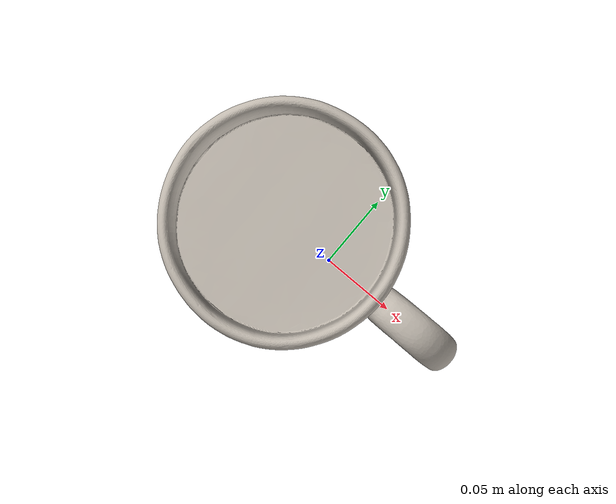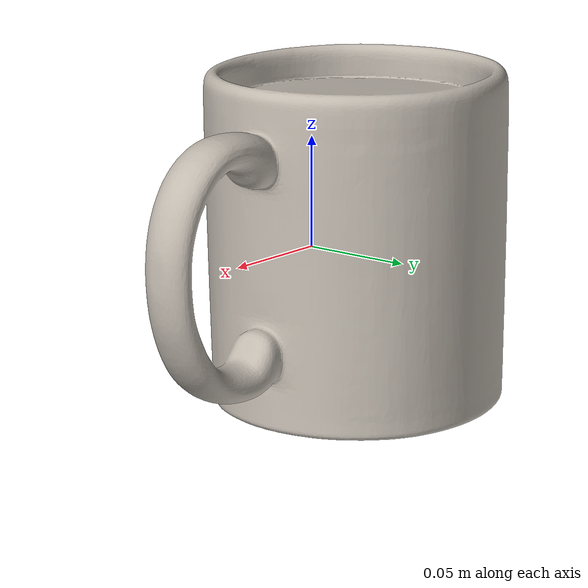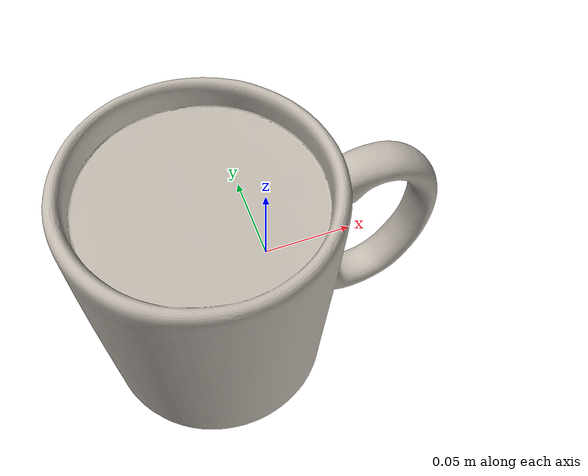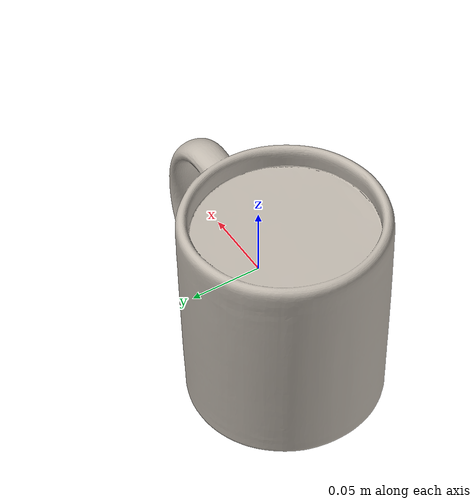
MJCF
<mujoco model="coffee">
  <asset>
  <texture file="visual/material_0.png" name="tex-coffee" type="2d" />
  <material name="coffee" reflectance="0.5" texrepeat="1 1" texture="tex-coffee" texuniform="false" />
  <mesh file="visual/model_normalized_0.obj" name="model_normalized_0_vis" scale="0.2 0.2 0.2" /><mesh file="collision/model_normalized_collision_22.obj" name="model_normalized_collision_22._coll" scale="0.2 0.2 0.2" /><mesh file="collision/model_normalized_collision_23.obj" name="model_normalized_collision_23._coll" scale="0.2 0.2 0.2" /><mesh file="collision/model_normalized_collision_21.obj" name="model_normalized_collision_21._coll" scale="0.2 0.2 0.2" /><mesh file="collision/model_normalized_collision_20.obj" name="model_normalized_collision_20._coll" scale="0.2 0.2 0.2" /><mesh file="collision/model_normalized_collision_24.obj" name="model_normalized_collision_24._coll" scale="0.2 0.2 0.2" /><mesh file="collision/model_normalized_collision_30.obj" name="model_normalized_collision_30._coll" scale="0.2 0.2 0.2" /><mesh file="collision/model_normalized_collision_18.obj" name="model_normalized_collision_18._coll" scale="0.2 0.2 0.2" /><mesh file="collision/model_normalized_collision_19.obj" name="model_normalized_collision_19._coll" scale="0.2 0.2 0.2" /><mesh file="collision/model_normalized_collision_31.obj" name="model_normalized_collision_31._coll" scale="0.2 0.2 0.2" /><mesh file="collision/model_normalized_collision_25.obj" name="model_normalized_collision_25._coll" scale="0.2 0.2 0.2" /><mesh file="collision/model_normalized_collision_27.obj" name="model_normalized_collision_27._coll" scale="0.2 0.2 0.2" /><mesh file="collision/model_normalized_collision_26.obj" name="model_normalized_collision_26._coll" scale="0.2 0.2 0.2" /><mesh file="collision/model_normalized_collision_9.obj" name="model_normalized_collision_9._coll" scale="0.2 0.2 0.2" /><mesh file="collision/model_normalized_collision_8.obj" name="model_normalized_collision_8._coll" scale="0.2 0.2 0.2" /><mesh file="collision/model_normalized_collision_6.obj" name="model_normalized_collision_6._coll" scale="0.2 0.2 0.2" /><mesh file="collision/model_normalized_collision_7.obj" name="model_normalized_collision_7._coll" scale="0.2 0.2 0.2" /><mesh file="collision/model_normalized_collision_5.obj" name="model_normalized_collision_5._coll" scale="0.2 0.2 0.2" /><mesh file="collision/model_normalized_collision_4.obj" name="model_normalized_collision_4._coll" scale="0.2 0.2 0.2" /><mesh file="collision/model_normalized_collision_0.obj" name="model_normalized_collision_0._coll" scale="0.2 0.2 0.2" /><mesh file="collision/model_normalized_collision_1.obj" name="model_normalized_collision_1._coll" scale="0.2 0.2 0.2" /><mesh file="collision/model_normalized_collision_3.obj" name="model_normalized_collision_3._coll" scale="0.2 0.2 0.2" /><mesh file="collision/model_normalized_collision_2.obj" name="model_normalized_collision_2._coll" scale="0.2 0.2 0.2" /><mesh file="collision/model_normalized_collision_17.obj" name="model_normalized_collision_17._coll" scale="0.2 0.2 0.2" /><mesh file="collision/model_normalized_collision_16.obj" name="model_normalized_collision_16._coll" scale="0.2 0.2 0.2" /><mesh file="collision/model_normalized_collision_28.obj" name="model_normalized_collision_28._coll" scale="0.2 0.2 0.2" /><mesh file="collision/model_normalized_collision_14.obj" name="model_normalized_collision_14._coll" scale="0.2 0.2 0.2" /><mesh file="collision/model_normalized_collision_15.obj" name="model_normalized_collision_15._coll" scale="0.2 0.2 0.2" /><mesh file="collision/model_normalized_collision_29.obj" name="model_normalized_collision_29._coll" scale="0.2 0.2 0.2" /><mesh file="collision/model_normalized_collision_11.obj" name="model_normalized_collision_11._coll" scale="0.2 0.2 0.2" /><mesh file="collision/model_normalized_collision_10.obj" name="model_normalized_collision_10._coll" scale="0.2 0.2 0.2" /><mesh file="collision/model_normalized_collision_12.obj" name="model_normalized_collision_12._coll" scale="0.2 0.2 0.2" /><mesh file="collision/model_normalized_collision_13.obj" name="model_normalized_collision_13._coll" scale="0.2 0.2 0.2" /><texture type="2d" name="material_0" file="visual/material_0.png" /><material name="material_0" texture="material_0" specular="0.4000000000000001" shininess="0.001" /></asset>
  <worldbody>
    <body>
      <body name="object">
      <geom solimp="0.998 0.998 0.001" solref="0.001 1" density="100" friction="0.95 0.3 0.1" type="mesh" mesh="model_normalized_0_vis" conaffinity="0" contype="0" group="1" material="material_0" /><geom solimp="0.998 0.998 0.001" solref="0.001 1" density="100" friction="0.95 0.3 0.1" type="mesh" mesh="model_normalized_collision_22._coll" group="0" rgba="0.8 0.8 0.8 0.0" /><geom solimp="0.998 0.998 0.001" solref="0.001 1" density="100" friction="0.95 0.3 0.1" type="mesh" mesh="model_normalized_collision_23._coll" group="0" rgba="0.8 0.8 0.8 0.0" /><geom solimp="0.998 0.998 0.001" solref="0.001 1" density="100" friction="0.95 0.3 0.1" type="mesh" mesh="model_normalized_collision_21._coll" group="0" rgba="0.8 0.8 0.8 0.0" /><geom solimp="0.998 0.998 0.001" solref="0.001 1" density="100" friction="0.95 0.3 0.1" type="mesh" mesh="model_normalized_collision_20._coll" group="0" rgba="0.8 0.8 0.8 0.0" /><geom solimp="0.998 0.998 0.001" solref="0.001 1" density="100" friction="0.95 0.3 0.1" type="mesh" mesh="model_normalized_collision_24._coll" group="0" rgba="0.8 0.8 0.8 0.0" /><geom solimp="0.998 0.998 0.001" solref="0.001 1" density="100" friction="0.95 0.3 0.1" type="mesh" mesh="model_normalized_collision_30._coll" group="0" rgba="0.8 0.8 0.8 0.0" /><geom solimp="0.998 0.998 0.001" solref="0.001 1" density="100" friction="0.95 0.3 0.1" type="mesh" mesh="model_normalized_collision_18._coll" group="0" rgba="0.8 0.8 0.8 0.0" /><geom solimp="0.998 0.998 0.001" solref="0.001 1" density="100" friction="0.95 0.3 0.1" type="mesh" mesh="model_normalized_collision_19._coll" group="0" rgba="0.8 0.8 0.8 0.0" /><geom solimp="0.998 0.998 0.001" solref="0.001 1" density="100" friction="0.95 0.3 0.1" type="mesh" mesh="model_normalized_collision_31._coll" group="0" rgba="0.8 0.8 0.8 0.0" /><geom solimp="0.998 0.998 0.001" solref="0.001 1" density="100" friction="0.95 0.3 0.1" type="mesh" mesh="model_normalized_collision_25._coll" group="0" rgba="0.8 0.8 0.8 0.0" /><geom solimp="0.998 0.998 0.001" solref="0.001 1" density="100" friction="0.95 0.3 0.1" type="mesh" mesh="model_normalized_collision_27._coll" group="0" rgba="0.8 0.8 0.8 0.0" /><geom solimp="0.998 0.998 0.001" solref="0.001 1" density="100" friction="0.95 0.3 0.1" type="mesh" mesh="model_normalized_collision_26._coll" group="0" rgba="0.8 0.8 0.8 0.0" /><geom solimp="0.998 0.998 0.001" solref="0.001 1" density="100" friction="0.95 0.3 0.1" type="mesh" mesh="model_normalized_collision_9._coll" group="0" rgba="0.8 0.8 0.8 0.0" /><geom solimp="0.998 0.998 0.001" solref="0.001 1" density="100" friction="0.95 0.3 0.1" type="mesh" mesh="model_normalized_collision_8._coll" group="0" rgba="0.8 0.8 0.8 0.0" /><geom solimp="0.998 0.998 0.001" solref="0.001 1" density="100" friction="0.95 0.3 0.1" type="mesh" mesh="model_normalized_collision_6._coll" group="0" rgba="0.8 0.8 0.8 0.0" /><geom solimp="0.998 0.998 0.001" solref="0.001 1" density="100" friction="0.95 0.3 0.1" type="mesh" mesh="model_normalized_collision_7._coll" group="0" rgba="0.8 0.8 0.8 0.0" /><geom solimp="0.998 0.998 0.001" solref="0.001 1" density="100" friction="0.95 0.3 0.1" type="mesh" mesh="model_normalized_collision_5._coll" group="0" rgba="0.8 0.8 0.8 0.0" /><geom solimp="0.998 0.998 0.001" solref="0.001 1" density="100" friction="0.95 0.3 0.1" type="mesh" mesh="model_normalized_collision_4._coll" group="0" rgba="0.8 0.8 0.8 0.0" /><geom solimp="0.998 0.998 0.001" solref="0.001 1" density="100" friction="0.95 0.3 0.1" type="mesh" mesh="model_normalized_collision_0._coll" group="0" rgba="0.8 0.8 0.8 0.0" /><geom solimp="0.998 0.998 0.001" solref="0.001 1" density="100" friction="0.95 0.3 0.1" type="mesh" mesh="model_normalized_collision_1._coll" group="0" rgba="0.8 0.8 0.8 0.0" /><geom solimp="0.998 0.998 0.001" solref="0.001 1" density="100" friction="0.95 0.3 0.1" type="mesh" mesh="model_normalized_collision_3._coll" group="0" rgba="0.8 0.8 0.8 0.0" /><geom solimp="0.998 0.998 0.001" solref="0.001 1" density="100" friction="0.95 0.3 0.1" type="mesh" mesh="model_normalized_collision_2._coll" group="0" rgba="0.8 0.8 0.8 0.0" /><geom solimp="0.998 0.998 0.001" solref="0.001 1" density="100" friction="0.95 0.3 0.1" type="mesh" mesh="model_normalized_collision_17._coll" group="0" rgba="0.8 0.8 0.8 0.0" /><geom solimp="0.998 0.998 0.001" solref="0.001 1" density="100" friction="0.95 0.3 0.1" type="mesh" mesh="model_normalized_collision_16._coll" group="0" rgba="0.8 0.8 0.8 0.0" /><geom solimp="0.998 0.998 0.001" solref="0.001 1" density="100" friction="0.95 0.3 0.1" type="mesh" mesh="model_normalized_collision_28._coll" group="0" rgba="0.8 0.8 0.8 0.0" /><geom solimp="0.998 0.998 0.001" solref="0.001 1" density="100" friction="0.95 0.3 0.1" type="mesh" mesh="model_normalized_collision_14._coll" group="0" rgba="0.8 0.8 0.8 0.0" /><geom solimp="0.998 0.998 0.001" solref="0.001 1" density="100" friction="0.95 0.3 0.1" type="mesh" mesh="model_normalized_collision_15._coll" group="0" rgba="0.8 0.8 0.8 0.0" /><geom solimp="0.998 0.998 0.001" solref="0.001 1" density="100" friction="0.95 0.3 0.1" type="mesh" mesh="model_normalized_collision_29._coll" group="0" rgba="0.8 0.8 0.8 0.0" /><geom solimp="0.998 0.998 0.001" solref="0.001 1" density="100" friction="0.95 0.3 0.1" type="mesh" mesh="model_normalized_collision_11._coll" group="0" rgba="0.8 0.8 0.8 0.0" /><geom solimp="0.998 0.998 0.001" solref="0.001 1" density="100" friction="0.95 0.3 0.1" type="mesh" mesh="model_normalized_collision_10._coll" group="0" rgba="0.8 0.8 0.8 0.0" /><geom solimp="0.998 0.998 0.001" solref="0.001 1" density="100" friction="0.95 0.3 0.1" type="mesh" mesh="model_normalized_collision_12._coll" group="0" rgba="0.8 0.8 0.8 0.0" /><geom solimp="0.998 0.998 0.001" solref="0.001 1" density="100" friction="0.95 0.3 0.1" type="mesh" mesh="model_normalized_collision_13._coll" group="0" rgba="0.8 0.8 0.8 0.0" /></body>
      <site rgba="0 0 0 0" size="0.005" pos="1.7607856839241265e-09 0.0015888930301451165 -0.39606117518923334" name="bottom_site" />
      <site rgba="0 0 0 0" size="0.005" pos="1.7607856839241265e-09 0.0015888930301451165 0.3918176127047994" name="top_site" />
      <site rgba="0 0 0 0" size="0.005" pos="0.5075757593899004 0.35007374170555483 -0.0021217812422169857" name="horizontal_radius_site" />
      <site rgba="0 0 0 0" size="0.005" pos="-0.507576 -0.346896 -0.396061" name="ext_p0" />
      <site rgba="0 0 0 0" size="0.005" pos="0.507576 -0.346896 -0.396061" name="ext_px" />
      <site rgba="0 0 0 0" size="0.005" pos="-0.507576 0.350074 -0.396061" name="ext_py" />
      <site rgba="0 0 0 0" size="0.005" pos="-0.507576 -0.346896 0.391818" name="ext_pz" />
      <site rgba="0 0 0 0" size="0.005" pos="-0.497576 -0.336896 -0.386061" name="int_p0" />
      <site rgba="0 0 0 0" size="0.005" pos="0.497576 -0.336896 -0.386061" name="int_px" />
      <site rgba="0 0 0 0" size="0.005" pos="-0.497576 0.340074 -0.386061" name="int_py" />
      <site rgba="0 0 0 0" size="0.005" pos="-0.497576 -0.336896 0.381818" name="int_pz" />
    </body>
  </worldbody>
</mujoco>
